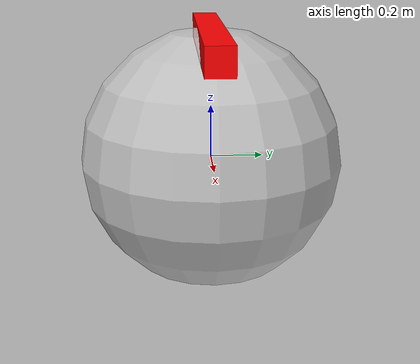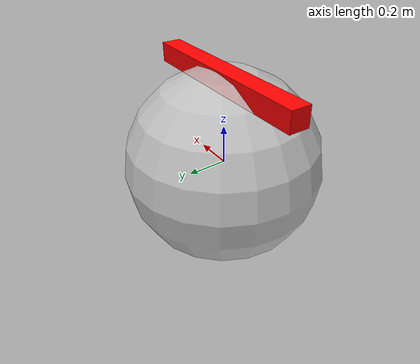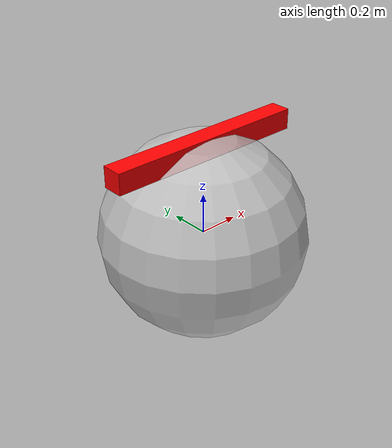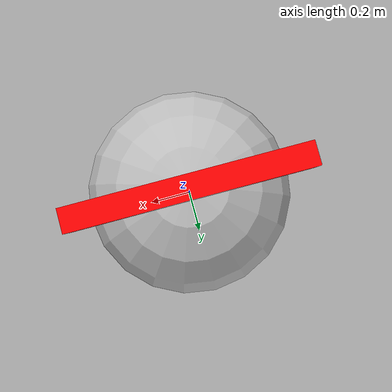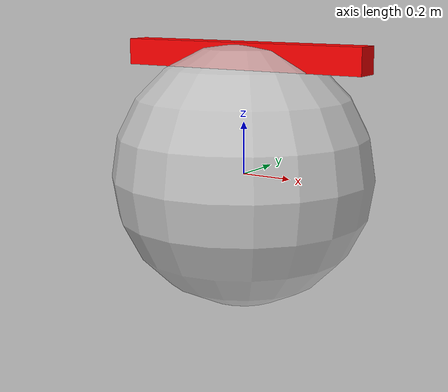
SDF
<?xml version="1.0"?>
<sdf version="1.7">
  <!-- world->ghost_body_y->ghost_body_z_sphere-->
  <model name="sphere_yz">
    <!-- Ghost body of negligible mass. -->
    <link name="ghost_body_y">
      <inertial>
        <mass>1.0e-6</mass>
        <inertia>
          <ixx>1.0e-6</ixx>
          <ixy>0</ixy>
          <ixz>0</ixz>
          <iyy>1.0e-6</iyy>
          <iyz>0</iyz>
          <izz>1.0e-6</izz>
        </inertia>
      </inertial>
    </link>

    <link name="ghost_body_z">
      <inertial>
        <mass>1.0e-6</mass>
        <inertia>
          <ixx>1.0e-6</ixx>
          <ixy>0</ixy>
          <ixz>0</ixz>
          <iyy>1.0e-6</iyy>
          <iyz>0</iyz>
          <izz>1.0e-6</izz>
        </inertia>
      </inertial>
    </link>

    <joint name="y_slider" type="prismatic">
      <parent>world</parent>
      <child>ghost_body_y</child>
      <axis>
        <xyz>0 1 0</xyz>
        <!-- Drake attaches an actuator to all joints with a non-zero effort
             limit. We do not want an actuator for this joint. -->
        <limit>
          <effort>0</effort>
        </limit>
      </axis>
    </joint>

    <joint name="z_slider" type="prismatic">
      <parent>ghost_body_y</parent>
      <child>ghost_body_z</child>
      <axis>
        <xyz>0 0 1</xyz>
        <!-- Drake attaches an actuator to all joints with a non-zero effort
             limit. We do not want an actuator for this joint and therefore we
             set a zero effort limit. -->
        <limit>
          <effort>0</effort>
        </limit>
      </axis>
    </joint>

    <joint name="rotation" type="revolute">
      <parent>ghost_body_z</parent>
      <child>sphere</child>
      <axis>
        <xyz>1 0 0</xyz>
        <!-- Drake attaches an actuator to all joints with a non-zero effort
             limit. We do not want an actuator for this joint and therefore we
             set a zero effort limit. -->
        <limit>
          <effort>0</effort>
        </limit>
      </axis>
    </joint>

    <!-- The model for a solid sphere of uniform density. -->
    <link name="sphere">
      <inertial>
        <mass>1.0</mass>
        <inertia>
          <ixx>0.166666666666667</ixx>
          <ixy>0</ixy>
          <ixz>0</ixz>
          <iyy>0.166666666666667</iyy>
          <iyz>0</iyz>
          <izz>0.166666666666667</izz>
        </inertia>
      </inertial>
      <visual name="sphere">
        <geometry>
          <sphere>
            <radius>0.5</radius>
          </sphere>
        </geometry>
        <material>
          <diffuse>0.8 0.8 0.8 0.8</diffuse>
        </material>
      </visual>

      <visual name='box'>
        <pose> 0 0 0.45 0 0 0 </pose>
        <geometry>
          <box>
           <size>1 0.1 0.1 </size>
          </box>
        </geometry>
        <material>
          <diffuse>1 0 0 1</diffuse>
        </material>
      </visual>

      <collision name="collision">
        <geometry>
          <sphere>
            <radius>0.5</radius>
          </sphere>
        </geometry>
        <surface>
          <friction>
            <ode>
              <mu>0.8</mu>
              <mu2>0.8</mu2>
            </ode>
          </friction>
        </surface>
      </collision>
    </link>
  </model>
</sdf>
